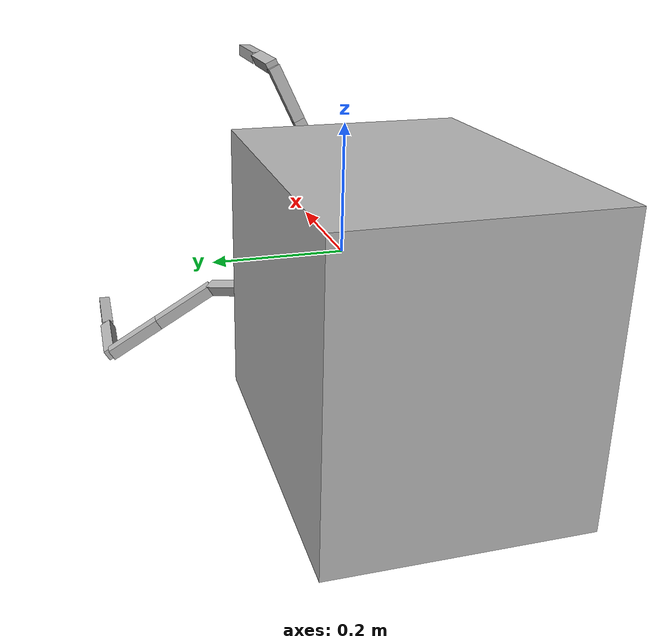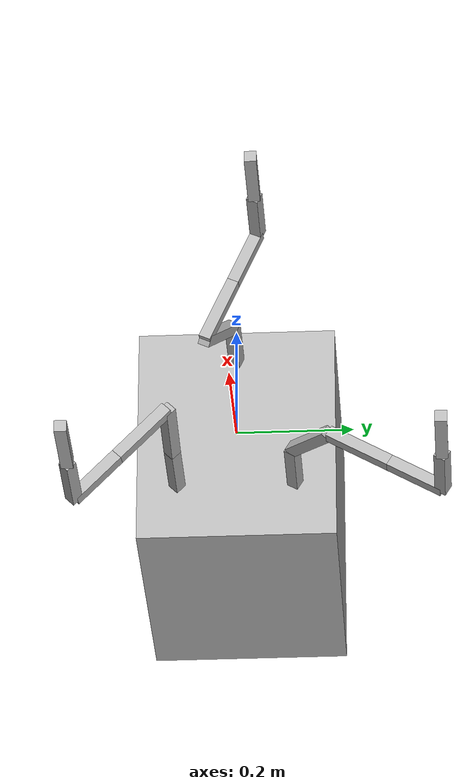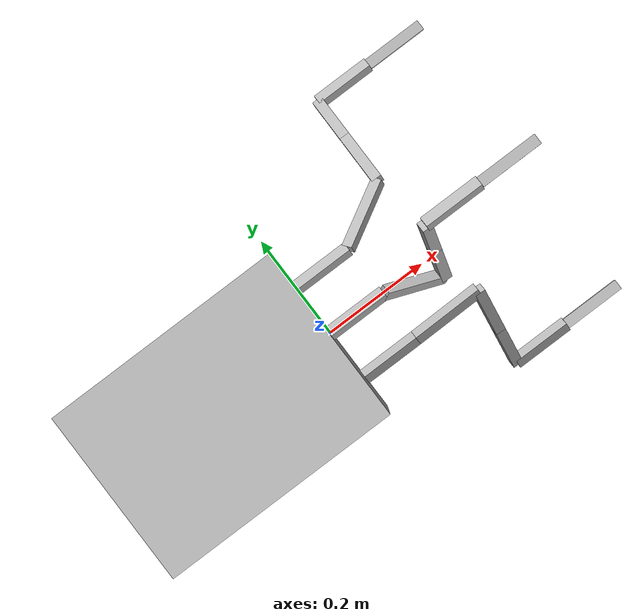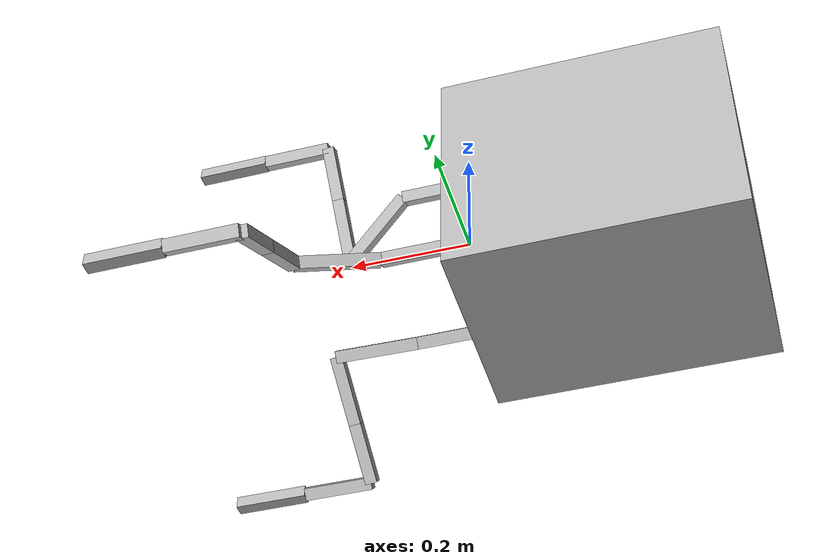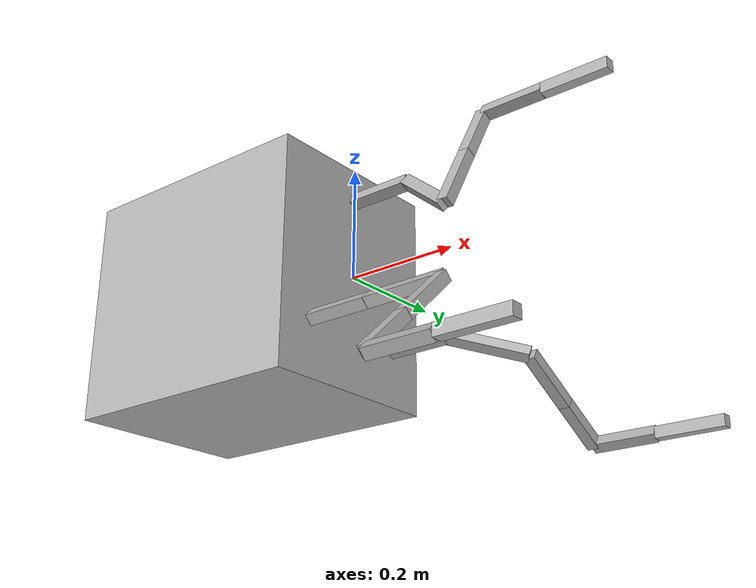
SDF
<?xml version="1.0" ?>
<sdf version="1.5">
<model name="four_bar_sdf">
<pose>0 0 0 0 0 0</pose>
<self_collide>true</self_collide>
<link name="linkROV">
<pose>-0.2286 0 0 0 0 0</pose>
<inertial>
<mass>1.0</mass>
<inertia>
<ixx>0.0227</ixx>
<iyy>0.0306</iyy>
<izz>0.0269</izz>
<ixy>0.0</ixy>
<ixz>0.0</ixz>
<iyz>0.0</iyz>
</inertia>
</inertial>
<collision name="linkROV_collision">
<geometry>
<box>
<size>0.4572 0.33805 0.39785</size>
</box>
</geometry>
</collision>
<visual name="linkROV_visual">
<geometry>
<box>
<size>0.4572 0.33805 0.39785</size>
</box>
</geometry>
<material>
<color rgba="0.3 0.3 0.3 1.0"/>
</material>
</visual>
</link>
<link name="arm1link1">
<pose>0.05750000 0.10000000 -0.10000000 -0.53999705 -0.00000000 0.00000000 </pose>
<inertial>
<mass>0.575</mass>
<inertia>
<ixx>3.8333e-05</ixx>
<iyy>6.5286e-04</iyy>
<izz>6.5286e-04</izz>
<ixy>0.0</ixy>
<ixz>0.0</ixz>
<iyz>0.0</iyz>
</inertia>
</inertial>
<collision name="arm1link1_collision">
<geometry>
<box>
<size>0.115 0.02 0.02</size>
</box>
</geometry>
</collision>
<visual name="arm1link1_visual">
<geometry>
<box>
<size>0.115 0.02 0.02</size>
</box>
</geometry>
<material>
<color rgba="0.3 0.3 0.3 1.0"/>
</material>
</visual>
</link>
<link name="arm1link2">
<pose>0.17353082 0.13293141 -0.11973993 -0.46461711 0.28587709 0.51249106 </pose>
<inertial>
<mass>0.700</mass>
<inertia>
<ixx>4.6667e-05</ixx>
<iyy>1.1667e-03</iyy>
<izz>1.1667e-03</izz>
<ixy>0.0</ixy>
<ixz>0.0</ixz>
<iyz>0.0</iyz>
</inertia>
</inertial>
<collision name="arm1link2_collision">
<geometry>
<box>
<size>0.140 0.02 0.02</size>
</box>
</geometry>
</collision>
<visual name="arm1link2_visual">
<geometry>
<box>
<size>0.140 0.02 0.02</size>
</box>
</geometry>
<material>
<color rgba="0.3 0.3 0.3 1.0"/>
</material>
</visual>
</link>
<link name="arm1link3">
<pose>0.23308412 0.21517337 -0.16903787 -0.01065870 0.53990227 1.55006384 </pose>
<inertial>
<mass>0.575</mass>
<inertia>
<ixx>3.8333e-05</ixx>
<iyy>6.5286e-04</iyy>
<izz>6.5286e-04</izz>
<ixy>0.0</ixy>
<ixz>0.0</ixz>
<iyz>0.0</iyz>
</inertia>
</inertial>
<collision name="arm1link3_collision">
<geometry>
<box>
<size>0.115 0.02 0.02</size>
</box>
</geometry>
</collision>
<visual name="arm1link3_visual">
<geometry>
<box>
<size>0.115 0.02 0.02</size>
</box>
</geometry>
<material>
<color rgba="0.3 0.3 0.3 1.0"/>
</material>
</visual>
</link>
<link name="arm1link4">
<pose>0.23499570 0.30736264 -0.22429847 -0.01028446 0.53990227 1.55006384 </pose>
<inertial>
<mass>0.500</mass>
<inertia>
<ixx>3.3333e-05</ixx>
<iyy>4.3333e-04</iyy>
<izz>4.3333e-04</izz>
<ixy>0.0</ixy>
<ixz>0.0</ixz>
<iyz>0.0</iyz>
</inertia>
</inertial>
<collision name="arm1link4_collision">
<geometry>
<box>
<size>0.100 0.02 0.02</size>
</box>
</geometry>
</collision>
<visual name="arm1link4_visual">
<geometry>
<box>
<size>0.100 0.02 0.02</size>
</box>
</geometry>
<material>
<color rgba="0.3 0.3 0.3 1.0"/>
</material>
</visual>
</link>
<link name="arm1link5">
<pose>0.29338480 0.35025603 -0.25003496 -0.53999022 0.00058913 0.00025504 </pose>
<inertial>
<mass>0.575</mass>
<inertia>
<ixx>3.8333e-05</ixx>
<iyy>6.5286e-04</iyy>
<izz>6.5286e-04</izz>
<ixy>0.0</ixy>
<ixz>0.0</ixz>
<iyz>0.0</iyz>
</inertia>
</inertial>
<collision name="arm1link5_collision">
<geometry>
<box>
<size>0.115 0.02 0.02</size>
</box>
</geometry>
</collision>
<visual name="arm1link5_visual">
<geometry>
<box>
<size>0.115 0.02 0.02</size>
</box>
</geometry>
<material>
<color rgba="0.3 0.3 0.3 1.0"/>
</material>
</visual>
</link>
<link name="arm1link6">
<pose>0.41088478 0.35028600 -0.25010418 -0.00025477 0.00058913 0.00025504 </pose>
<inertial>
<mass>0.600</mass>
<inertia>
<ixx>4.0000e-05</ixx>
<iyy>7.4000e-04</iyy>
<izz>7.4000e-04</izz>
<ixy>0.0</ixy>
<ixz>0.0</ixz>
<iyz>0.0</iyz>
</inertia>
</inertial>
<collision name="arm1link6_collision">
<geometry>
<box>
<size>0.120 0.02 0.02</size>
</box>
</geometry>
</collision>
<visual name="arm1link6_visual">
<geometry>
<box>
<size>0.120 0.02 0.02</size>
</box>
</geometry>
<material>
<color rgba="0.3 0.3 0.3 1.0"/>
</material>
</visual>
</link>
<link name="arm2link1">
<pose>0.05750000 -0.10000000 -0.10000000 -2.35580000 0.00000000 0.00000000 </pose>
<inertial>
<mass>0.575</mass>
<inertia>
<ixx>3.8333e-05</ixx>
<iyy>6.5286e-04</iyy>
<izz>6.5286e-04</izz>
<ixy>0.0</ixy>
<ixz>0.0</ixz>
<iyz>0.0</iyz>
</inertia>
</inertial>
<collision name="arm2link1_collision">
<geometry>
<box>
<size>0.115 0.02 0.02</size>
</box>
</geometry>
</collision>
<visual name="arm2link1_visual">
<geometry>
<box>
<size>0.115 0.02 0.02</size>
</box>
</geometry>
<material>
<color rgba="0.3 0.3 0.3 1.0"/>
</material>
</visual>
</link>
<link name="arm2link2">
<pose>0.18499000 -0.09920200 -0.09920100 -2.35580000 -0.01141600 0.01140700 </pose>
<inertial>
<mass>0.700</mass>
<inertia>
<ixx>4.6667e-05</ixx>
<iyy>1.1667e-03</iyy>
<izz>1.1667e-03</izz>
<ixy>0.0</ixy>
<ixz>0.0</ixz>
<iyz>0.0</iyz>
</inertia>
</inertial>
<collision name="arm2link2_collision">
<geometry>
<box>
<size>0.140 0.02 0.02</size>
</box>
</geometry>
</collision>
<visual name="arm2link2_visual">
<geometry>
<box>
<size>0.140 0.02 0.02</size>
</box>
</geometry>
<material>
<color rgba="0.3 0.3 0.3 1.0"/>
</material>
</visual>
</link>
<link name="arm2link3">
<pose>0.25026000 -0.13891000 -0.13894000 3.05960000 0.78246000 -1.68690000 </pose>
<inertial>
<mass>0.575</mass>
<inertia>
<ixx>3.8333e-05</ixx>
<iyy>6.5286e-04</iyy>
<izz>6.5286e-04</izz>
<ixy>0.0</ixy>
<ixz>0.0</ixz>
<iyz>0.0</iyz>
</inertia>
</inertial>
<collision name="arm2link3_collision">
<geometry>
<box>
<size>0.115 0.02 0.02</size>
</box>
</geometry>
</collision>
<visual name="arm2link3_visual">
<geometry>
<box>
<size>0.115 0.02 0.02</size>
</box>
</geometry>
<material>
<color rgba="0.3 0.3 0.3 1.0"/>
</material>
</visual>
</link>
<link name="arm2link4">
<pose>0.24143000 -0.21463000 -0.21473000 3.05930000 0.78246000 -1.68690000 </pose>
<inertial>
<mass>0.500</mass>
<inertia>
<ixx>3.3333e-05</ixx>
<iyy>4.3333e-04</iyy>
<izz>4.3333e-04</izz>
<ixy>0.0</ixy>
<ixz>0.0</ixz>
<iyz>0.0</iyz>
</inertia>
</inertial>
<collision name="arm2link4_collision">
<geometry>
<box>
<size>0.100 0.02 0.02</size>
</box>
</geometry>
</collision>
<visual name="arm2link4_visual">
<geometry>
<box>
<size>0.100 0.02 0.02</size>
</box>
</geometry>
<material>
<color rgba="0.3 0.3 0.3 1.0"/>
</material>
</visual>
</link>
<link name="arm2link5">
<pose>0.29482000 -0.24982000 -0.24997000 -2.35570000 -0.00015365 0.00050454 </pose>
<inertial>
<mass>0.575</mass>
<inertia>
<ixx>3.8333e-05</ixx>
<iyy>6.5286e-04</iyy>
<izz>6.5286e-04</izz>
<ixy>0.0</ixy>
<ixz>0.0</ixz>
<iyz>0.0</iyz>
</inertia>
</inertial>
<collision name="arm2link5_collision">
<geometry>
<box>
<size>0.115 0.02 0.02</size>
</box>
</geometry>
</collision>
<visual name="arm2link5_visual">
<geometry>
<box>
<size>0.115 0.02 0.02</size>
</box>
</geometry>
<material>
<color rgba="0.3 0.3 0.3 1.0"/>
</material>
</visual>
</link>
<link name="arm2link6">
<pose>0.41232000 -0.24976000 -0.24996000 0.00047988 -0.00015365 0.00050454 </pose>
<inertial>
<mass>0.600</mass>
<inertia>
<ixx>4.0000e-05</ixx>
<iyy>7.4000e-04</iyy>
<izz>7.4000e-04</izz>
<ixy>0.0</ixy>
<ixz>0.0</ixz>
<iyz>0.0</iyz>
</inertia>
</inertial>
<collision name="arm2link6_collision">
<geometry>
<box>
<size>0.120 0.02 0.02</size>
</box>
</geometry>
</collision>
<visual name="arm2link6_visual">
<geometry>
<box>
<size>0.120 0.02 0.02</size>
</box>
</geometry>
<material>
<color rgba="0.3 0.3 0.3 1.0"/>
</material>
</visual>
</link>
<link name="arm3link1">
<pose>0.05750000 0.00000000 0.14142000 1.13830000 0.00000000 0.00000000 </pose>
<inertial>
<mass>0.575</mass>
<inertia>
<ixx>3.8333e-05</ixx>
<iyy>6.5286e-04</iyy>
<izz>6.5286e-04</izz>
<ixy>0.0</ixy>
<ixz>0.0</ixz>
<iyz>0.0</iyz>
</inertia>
</inertial>
<collision name="arm3link1_collision">
<geometry>
<box>
<size>0.115 0.02 0.02</size>
</box>
</geometry>
</collision>
<visual name="arm3link1_visual">
<geometry>
<box>
<size>0.115 0.02 0.02</size>
</box>
</geometry>
<material>
<color rgba="0.3 0.3 0.3 1.0"/>
</material>
</visual>
</link>
<link name="arm3link2">
<pose>0.16646000 -0.01988900 0.09834100 1.01010000 0.66293000 -0.36879000 </pose>
<inertial>
<mass>0.700</mass>
<inertia>
<ixx>4.6667e-05</ixx>
<iyy>1.1667e-03</iyy>
<izz>1.1667e-03</izz>
<ixy>0.0</ixy>
<ixz>0.0</ixz>
<iyz>0.0</iyz>
</inertia>
</inertial>
<collision name="arm3link2_collision">
<geometry>
<box>
<size>0.140 0.02 0.02</size>
</box>
</geometry>
</collision>
<visual name="arm3link2_visual">
<geometry>
<box>
<size>0.140 0.02 0.02</size>
</box>
</geometry>
<material>
<color rgba="0.3 0.3 0.3 1.0"/>
</material>
</visual>
</link>
<link name="arm3link3">
<pose>0.22294000 -0.01576800 0.10727000 0.18643000 -1.13010000 1.36520000 </pose>
<inertial>
<mass>0.575</mass>
<inertia>
<ixx>3.8333e-05</ixx>
<iyy>6.5286e-04</iyy>
<izz>6.5286e-04</izz>
<ixy>0.0</ixy>
<ixz>0.0</ixz>
<iyz>0.0</iyz>
</inertia>
</inertial>
<collision name="arm3link3_collision">
<geometry>
<box>
<size>0.115 0.02 0.02</size>
</box>
</geometry>
</collision>
<visual name="arm3link3_visual">
<geometry>
<box>
<size>0.115 0.02 0.02</size>
</box>
</geometry>
<material>
<color rgba="0.3 0.3 0.3 1.0"/>
</material>
</visual>
</link>
<link name="arm3link4">
<pose>0.23230000 0.02912100 0.20450000 0.18642000 -1.13010000 1.36520000 </pose>
<inertial>
<mass>0.500</mass>
<inertia>
<ixx>3.3333e-05</ixx>
<iyy>4.3333e-04</iyy>
<izz>4.3333e-04</izz>
<ixy>0.0</ixy>
<ixz>0.0</ixz>
<iyz>0.0</iyz>
</inertia>
</inertial>
<collision name="arm3link4_collision">
<geometry>
<box>
<size>0.100 0.02 0.02</size>
</box>
</geometry>
</collision>
<visual name="arm3link4_visual">
<geometry>
<box>
<size>0.100 0.02 0.02</size>
</box>
</geometry>
<material>
<color rgba="0.3 0.3 0.3 1.0"/>
</material>
</visual>
</link>
<link name="arm3link5">
<pose>0.29415000 0.04999800 0.24972000 1.13830000 0.00004484 -0.00002839 </pose>
<inertial>
<mass>0.575</mass>
<inertia>
<ixx>3.8333e-05</ixx>
<iyy>6.5286e-04</iyy>
<izz>6.5286e-04</izz>
<ixy>0.0</ixy>
<ixz>0.0</ixz>
<iyz>0.0</iyz>
</inertia>
</inertial>
<collision name="arm3link5_collision">
<geometry>
<box>
<size>0.115 0.02 0.02</size>
</box>
</geometry>
</collision>
<visual name="arm3link5_visual">
<geometry>
<box>
<size>0.115 0.02 0.02</size>
</box>
</geometry>
<material>
<color rgba="0.3 0.3 0.3 1.0"/>
</material>
</visual>
</link>
<link name="arm3link6">
<pose>0.41165000 0.04999500 0.24971000 -0.00002760 0.00004484 -0.00002839 </pose>
<inertial>
<mass>0.600</mass>
<inertia>
<ixx>4.0000e-05</ixx>
<iyy>7.4000e-04</iyy>
<izz>7.4000e-04</izz>
<ixy>0.0</ixy>
<ixz>0.0</ixz>
<iyz>0.0</iyz>
</inertia>
</inertial>
<collision name="arm3link6_collision">
<geometry>
<box>
<size>0.120 0.02 0.02</size>
</box>
</geometry>
</collision>
<visual name="arm3link6_visual">
<geometry>
<box>
<size>0.120 0.02 0.02</size>
</box>
</geometry>
<material>
<color rgba="0.3 0.3 0.3 1.0"/>
</material>
</visual>
</link>
<joint name="arm1_jointgrip" type="fixed">
<pose>0 0 0 0 0 0</pose>
<parent>world</parent>
<child>arm1link6</child>
</joint>
<joint name="arm1_joint1" type="revolute">
<pose>0 0 0 0 0 0</pose>
<parent>linkROV</parent>
<child>arm1link1</child>
<axis>
<xyz>1 0 0</xyz>
<dynamics>
<damping>0.05</damping>
<friction>0</friction>
<spring_reference>0</spring_reference>
<spring_stiffness>10.0</spring_stiffness>
</dynamics>
</axis>
</joint>
<joint name="arm1_joint2" type="revolute">
<pose>-0.07 0 0 0 0 0</pose>
<parent>arm1link1</parent>
<child>arm1link2</child>
<axis>
<xyz>0 0 1</xyz>
<dynamics>
<damping>0.05</damping>
<friction>0</friction>
<spring_reference>0</spring_reference>
<spring_stiffness>10.0</spring_stiffness>
</dynamics>
</axis>
</joint>
<joint name="arm1_joint3" type="revolute">
<pose>-0.0575 0 0 0 0 0</pose>
<parent>arm1link2</parent>
<child>arm1link3</child>
<axis>
<xyz>0 0 1</xyz>
<dynamics>
<damping>0.05</damping>
<friction>0</friction>
<spring_reference>0</spring_reference>
<spring_stiffness>10.0</spring_stiffness>
</dynamics>
</axis>
</joint>
<joint name="arm1_joint4" type="revolute">
<pose>-0.05 0 0 0 0 0</pose>
<parent>arm1link3</parent>
<child>arm1link4</child>
<axis>
<xyz>1 0 0</xyz>
<dynamics>
<damping>0.05</damping>
<friction>0</friction>
<spring_reference>0</spring_reference>
<spring_stiffness>10.0</spring_stiffness>
</dynamics>
</axis>
</joint>
<joint name="arm1_joint5" type="revolute">
<pose>-0.0575 0 0 0 0 0</pose>
<parent>arm1link4</parent>
<child>arm1link5</child>
<axis>
<xyz>0 0 1</xyz>
<dynamics>
<damping>0.05</damping>
<friction>0</friction>
<spring_reference>0</spring_reference>
<spring_stiffness>10.0</spring_stiffness>
</dynamics>
</axis>
</joint>
<joint name="arm1_joint6" type="revolute">
<pose>-0.06 0 0 0 0 0</pose>
<parent>arm1link5</parent>
<child>arm1link6</child>
<axis>
<xyz>1 0 0</xyz>
<dynamics>
<damping>0.05</damping>
<friction>0</friction>
<spring_reference>0</spring_reference>
<spring_stiffness>10.0</spring_stiffness>
</dynamics>
</axis>
</joint>
<joint name="arm2_jointgrip" type="fixed">
<pose>0 0 0 0 0 0</pose>
<parent>world</parent>
<child>arm2link6</child>
</joint>
<joint name="arm2_joint1" type="revolute">
<pose>0 0 0 0 0 0</pose>
<parent>linkROV</parent>
<child>arm2link1</child>
<axis>
<xyz>1 0 0</xyz>
<dynamics>
<damping>0.05</damping>
<friction>0</friction>
<spring_reference>0</spring_reference>
<spring_stiffness>10.0</spring_stiffness>
</dynamics>
</axis>
</joint>
<joint name="arm2_joint2" type="revolute">
<pose>-0.07 0 0 0 0 0</pose>
<parent>arm2link1</parent>
<child>arm2link2</child>
<axis>
<xyz>0 0 1</xyz>
<dynamics>
<damping>0.05</damping>
<friction>0</friction>
<spring_reference>0</spring_reference>
<spring_stiffness>10.0</spring_stiffness>
</dynamics>
</axis>
</joint>
<joint name="arm2_joint3" type="revolute">
<pose>-0.0575 0 0 0 0 0</pose>
<parent>arm2link2</parent>
<child>arm2link3</child>
<axis>
<xyz>0 0 1</xyz>
<dynamics>
<damping>0.05</damping>
<friction>0</friction>
<spring_reference>0</spring_reference>
<spring_stiffness>10.0</spring_stiffness>
</dynamics>
</axis>
</joint>
<joint name="arm2_joint4" type="revolute">
<pose>-0.05 0 0 0 0 0</pose>
<parent>arm2link3</parent>
<child>arm2link4</child>
<axis>
<xyz>1 0 0</xyz>
<dynamics>
<damping>0.05</damping>
<friction>0</friction>
<spring_reference>0</spring_reference>
<spring_stiffness>10.0</spring_stiffness>
</dynamics>
</axis>
</joint>
<joint name="arm2_joint5" type="revolute">
<pose>-0.0575 0 0 0 0 0</pose>
<parent>arm2link4</parent>
<child>arm2link5</child>
<axis>
<xyz>0 0 1</xyz>
<dynamics>
<damping>0.05</damping>
<friction>0</friction>
<spring_reference>0</spring_reference>
<spring_stiffness>10.0</spring_stiffness>
</dynamics>
</axis>
</joint>
<joint name="arm2_joint6" type="revolute">
<pose>-0.06 0 0 0 0 0</pose>
<parent>arm2link5</parent>
<child>arm2link6</child>
<axis>
<xyz>1 0 0</xyz>
<dynamics>
<damping>0.05</damping>
<friction>0</friction>
<spring_reference>0</spring_reference>
<spring_stiffness>10.0</spring_stiffness>
</dynamics>
</axis>
</joint>
<joint name="arm3_jointgrip" type="fixed">
<pose>0 0 0 0 0 0</pose>
<parent>world</parent>
<child>arm3link6</child>
</joint>
<joint name="arm3_joint1" type="revolute">
<pose>0 0 0 0 0 0</pose>
<parent>linkROV</parent>
<child>arm3link1</child>
<axis>
<xyz>1 0 0</xyz>
<dynamics>
<damping>0.05</damping>
<friction>0</friction>
<spring_reference>0</spring_reference>
<spring_stiffness>10.0</spring_stiffness>
</dynamics>
</axis>
</joint>
<joint name="arm3_joint2" type="revolute">
<pose>-0.07 0 0 0 0 0</pose>
<parent>arm3link1</parent>
<child>arm3link2</child>
<axis>
<xyz>0 0 1</xyz>
<dynamics>
<damping>0.05</damping>
<friction>0</friction>
<spring_reference>0</spring_reference>
<spring_stiffness>10.0</spring_stiffness>
</dynamics>
</axis>
</joint>
<joint name="arm3_joint3" type="revolute">
<pose>-0.0575 0 0 0 0 0</pose>
<parent>arm3link2</parent>
<child>arm3link3</child>
<axis>
<xyz>0 0 1</xyz>
<dynamics>
<damping>0.05</damping>
<friction>0</friction>
<spring_reference>0</spring_reference>
<spring_stiffness>10.0</spring_stiffness>
</dynamics>
</axis>
</joint>
<joint name="arm3_joint4" type="revolute">
<pose>-0.05 0 0 0 0 0</pose>
<parent>arm3link3</parent>
<child>arm3link4</child>
<axis>
<xyz>1 0 0</xyz>
<dynamics>
<damping>0.05</damping>
<friction>0</friction>
<spring_reference>0</spring_reference>
<spring_stiffness>10.0</spring_stiffness>
</dynamics>
</axis>
</joint>
<joint name="arm3_joint5" type="revolute">
<pose>-0.0575 0 0 0 0 0</pose>
<parent>arm3link4</parent>
<child>arm3link5</child>
<axis>
<xyz>0 0 1</xyz>
<dynamics>
<damping>0.05</damping>
<friction>0</friction>
<spring_reference>0</spring_reference>
<spring_stiffness>10.0</spring_stiffness>
</dynamics>
</axis>
</joint>
<joint name="arm3_joint6" type="revolute">
<pose>-0.06 0 0 0 0 0</pose>
<parent>arm3link5</parent>
<child>arm3link6</child>
<axis>
<xyz>1 0 0</xyz>
<dynamics>
<damping>0.05</damping>
<friction>0</friction>
<spring_reference>0</spring_reference>
<spring_stiffness>10.0</spring_stiffness>
</dynamics>
</axis>
</joint>
</model>
</sdf>
